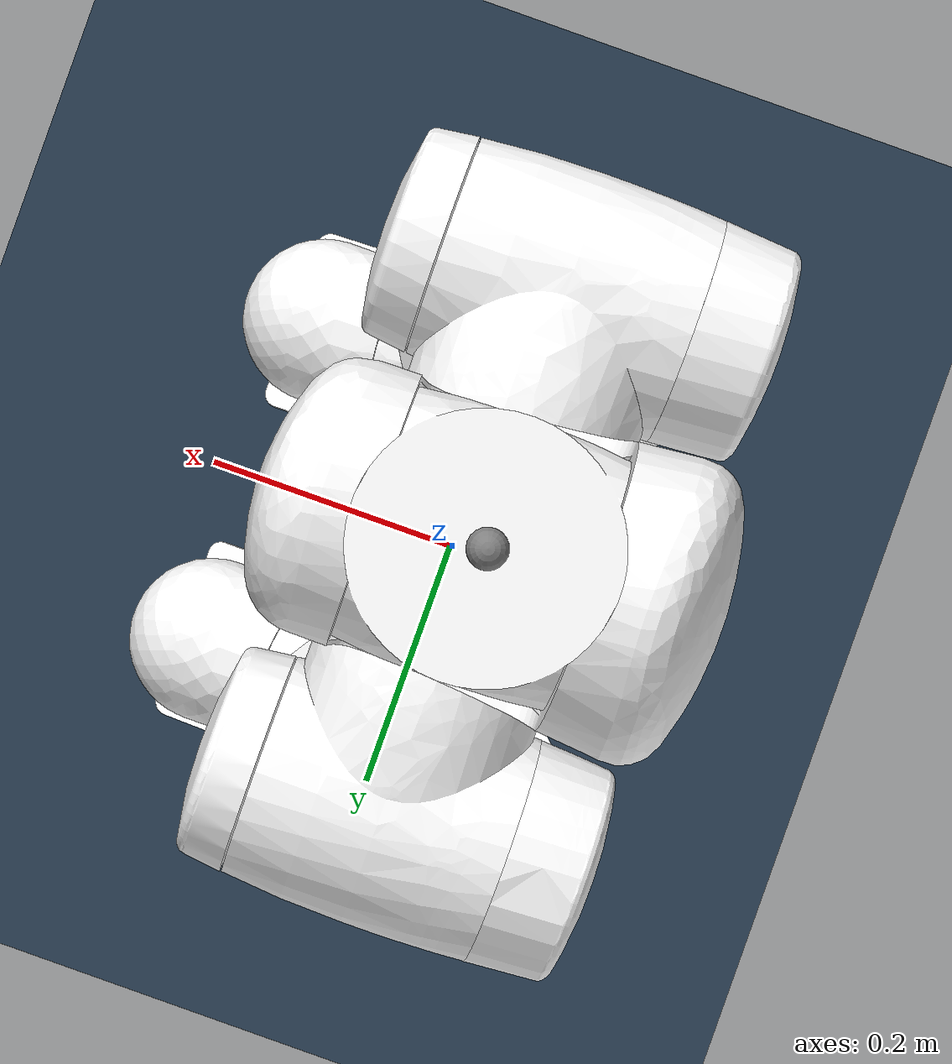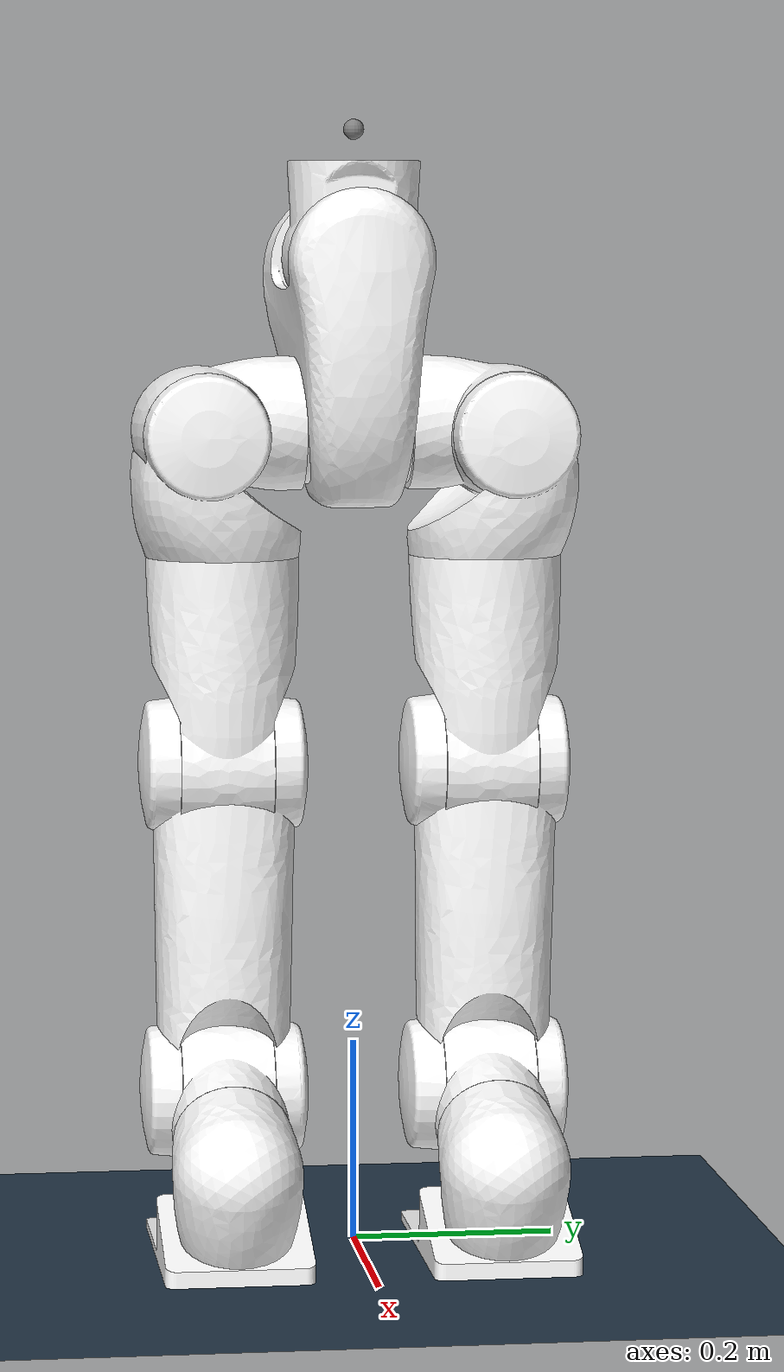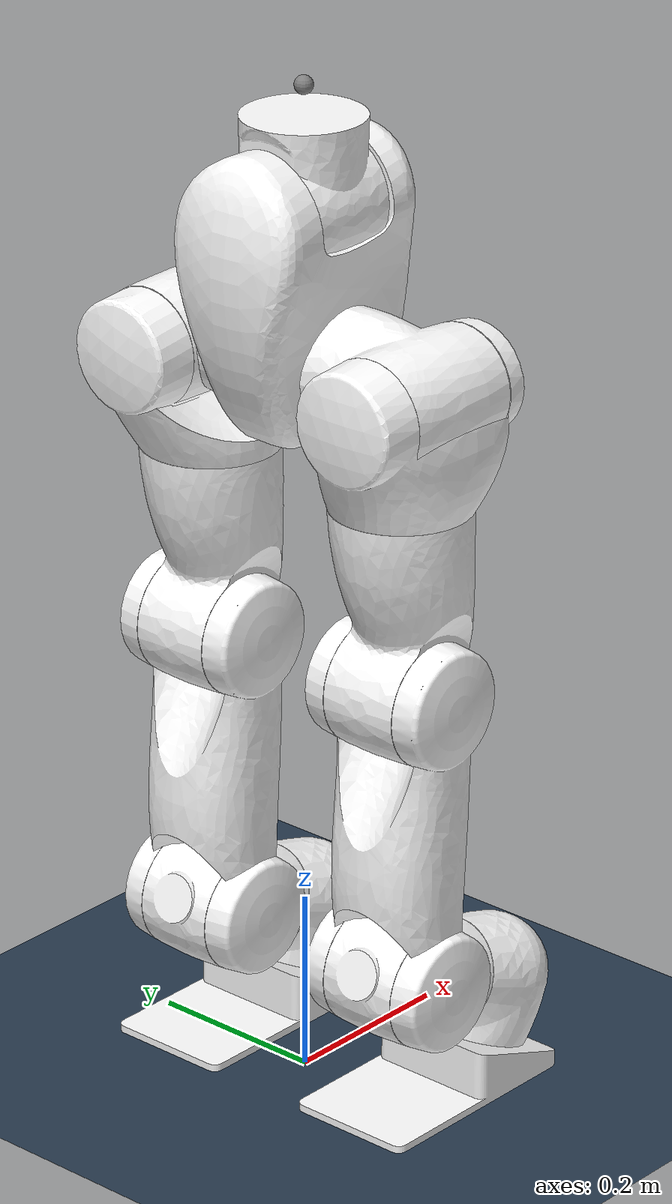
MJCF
<mujoco model="leg_v1">
  <compiler angle="radian" meshdir="meshes" autolimits="true"/>
  <option timestep='0.001' integrator="implicitfast"/>
  <statistic meansize="0.223045" extent="1.28205" center="0.00861955 0.000148433 -0.621626"/>
  <default class="main">
    <default class="leg">
      <joint armature="1" stiffness="20" damping="30"/>
      <default class="visual">
        <geom type="mesh" contype="0" conaffinity="0" group="2" density="0" rgba="1 1 1 1"/>
      </default>
      <default class="collision">
        <!-- all self collisions are disabled -->
        <geom type="mesh" contype="1" conaffinity="0" group="3" rgba="1 1 1 1"/>
      </default>
    </default>
  </default>
  <asset>
    <texture name="texplane" type="2d" builtin="checker" rgb1=".2 .3 .4" rgb2=".1 0.15 0.2"
          width="512" height="512" mark="cross" markrgb=".8 .8 .8"/>
    <material name="matplane" reflectance="0." texture="texplane" texrepeat="1 1" texuniform="true"/>

    <!-- visual meshes -->
    <mesh name="torso_link1" file="visual/torso_link1.obj"/>
    <mesh name="torso_link0" file="visual/torso_link0.obj"/>
    <mesh name="left_leg_link0" file="visual/left_leg_link0.obj"/>
    <mesh name="left_leg_link1" file="visual/left_leg_link1.obj"/>
    <mesh name="left_leg_link2" file="visual/left_leg_link2.obj"/>
    <mesh name="left_leg_link3" file="visual/left_leg_link3.obj"/>
    <mesh name="left_leg_link4" file="visual/left_leg_link4.obj"/>
    <mesh name="left_leg_link5" file="visual/left_leg_link5.obj"/>
    <mesh name="left_leg_link6" file="visual/left_leg_link6.obj"/>
    <mesh name="right_leg_link0" file="visual/right_leg_link0.obj"/>
    <mesh name="right_leg_link1" file="visual/right_leg_link1.obj"/>
    <mesh name="right_leg_link2" file="visual/right_leg_link2.obj"/>
    <mesh name="right_leg_link3" file="visual/right_leg_link3.obj"/>
    <mesh name="right_leg_link4" file="visual/right_leg_link4.obj"/>
    <mesh name="right_leg_link5" file="visual/right_leg_link5.obj"/>
    <mesh name="right_leg_link6" file="visual/right_leg_link6.obj"/>
    <mesh name="foot_base_link" file="visual/foot_base_link.obj"/>

    <!-- collision meshes -->
    <mesh name="torso_link1_collision" file="collision/torso_link1.stl"/>
    <mesh name="torso_link0_collision" file="collision/torso_link0.stl"/>
    <mesh name="left_leg_link0_collision" file="collision/left_leg_link0.stl"/>
    <mesh name="left_leg_link1_collision" file="collision/left_leg_link1.stl"/>
    <mesh name="left_leg_link2_collision" file="collision/left_leg_link2.stl"/>
    <mesh name="left_leg_link3_collision" file="collision/left_leg_link3.stl"/>
    <mesh name="left_leg_link4_collision" file="collision/left_leg_link4.stl"/>
    <mesh name="left_leg_link5_collision" file="collision/left_leg_link5.stl"/>
    <mesh name="left_leg_link6_collision" file="collision/left_leg_link6.stl"/>
    <mesh name="right_leg_link0_collision" file="collision/right_leg_link0.stl"/>
    <mesh name="right_leg_link1_collision" file="collision/right_leg_link1.stl"/>
    <mesh name="right_leg_link2_collision" file="collision/right_leg_link2.stl"/>
    <mesh name="right_leg_link3_collision" file="collision/right_leg_link3.stl"/>
    <mesh name="right_leg_link4_collision" file="collision/right_leg_link4.stl"/>
    <mesh name="right_leg_link5_collision" file="collision/right_leg_link5.stl"/>
    <mesh name="right_leg_link6_collision" file="collision/right_leg_link6.stl"/>
    <mesh name="foot_base_link_collision" file="collision/foot_base_link.stl"/>
  </asset>
  <worldbody>
    <light directional="true" diffuse=".4 .4 .4" specular="0.1 0.1 0.1" pos="0 0 5.0" dir="0 0 -1" castshadow="false"/>
    <light directional="true" diffuse=".6 .6 .6" specular="0.2 0.2 0.2" pos="0 0 4" dir="0 0 -1" castshadow="false"/>
    <geom name="ground" type="plane" size="0 0 1" pos="0.001 0 0" quat="1 0 0 0" material="matplane" condim="1" conaffinity='15'/>

    <body name="base_link" pos="0 0 1.1" quat="1 0 0 0" childclass="leg">
      <freejoint/>
      <geom class="visual" pos="0 0 -0.125" quat="-0.5 -0.5 -0.5 -0.5" type="mesh" mesh="torso_link1"/>
      <geom class="collision" pos="0 0 -0.125" quat="-0.5 -0.5 -0.5 -0.5" type="mesh" mesh="torso_link1_collision"/>
      <site name='imu' size='0.01' pos='0.0 0 0.0'/>
      <geom class="visual" pos="0 0 -0.285" quat="0 -0.707107 0 -0.707107" type="mesh" mesh="torso_link0"/>
      <geom class="collision" pos="0 0 -0.285" quat="0 -0.707107 0 -0.707107" type="mesh" mesh="torso_link0_collision"/>
      <geom class="visual" pos="0 0.02 -0.285" quat="0.5 0.5 0.5 -0.5" type="mesh" mesh="left_leg_link0"/>
      <geom class="collision" pos="0 0.02 -0.285" quat="0.5 0.5 0.5 -0.5" type="mesh" mesh="left_leg_link0_collision"/>
      <geom class="visual" pos="0 -0.02 -0.285" quat="0.5 0.5 0.5 -0.5" type="mesh" mesh="right_leg_link0"/>
      <geom class="collision" pos="0 -0.02 -0.285" quat="0.5 0.5 0.5 -0.5" type="mesh" mesh="right_leg_link0_collision"/>
      <body name="left_leg/link_1" pos="0 0.15 -0.285" quat="0.5 0.5 0.5 -0.5">
        <inertial pos="0.005749 -0.014791 0.027521" quat="0.974573 -0.200549 -0.0938204 -0.0344162" mass="4.73346" diaginertia="0.0187761 0.0165536 0.0112734"/>
        <joint name="left_leg/joint_1" pos="0 0 0" axis="0 0 1" range="-0.349066 2.18166"/>
        <geom class="visual" type="mesh" mesh="left_leg_link1"/>
        <geom class="collision" type="mesh" mesh="left_leg_link1_collision"/>
        <body name="left_leg/link_2" pos="0.01 0 0" quat="0.5 0.5 -0.5 0.5">
          <inertial pos="0.001424 -0.063857 0.011906" quat="0.939434 -0.310888 -0.00470262 0.144188" mass="4.38268" diaginertia="0.0311052 0.0250514 0.0194396"/>
          <joint name="left_leg/joint_2" pos="0 0 0" axis="0 0 1" range="-0.785398 0.174533"/>
          <geom class="visual" type="mesh" mesh="left_leg_link2"/>
          <geom class="collision" type="mesh" mesh="left_leg_link2_collision"/>
          <body name="left_leg/link_3" pos="0.02 -0.325 0" quat="0.5 -0.5 0.5 0.5">
            <inertial pos="0.004992 0.004534 0.062903" quat="0.737574 0.0325265 -0.0186696 0.674224" mass="5.80192" diaginertia="0.0361616 0.0349879 0.0121355"/>
            <joint name="left_leg/joint_3" pos="0 0 0" axis="0 0 1" range="-0.785398 0.785398"/>
            <geom class="visual" type="mesh" mesh="left_leg_link3"/>
            <geom class="collision" type="mesh" mesh="left_leg_link3_collision"/>
            <body name="left_leg/link_4" quat="0.5 -0.5 0.5 0.5">
              <inertial pos="0.152224 -0.005618 -0.000745" quat="0.515264 0.474553 0.465826 0.540655" mass="4.42018" diaginertia="0.0906721 0.0870797 0.0129417"/>
              <joint name="left_leg/joint_4" pos="0 0 0" axis="0 0 1" range="0 2.26893"/>
              <geom class="visual" type="mesh" mesh="left_leg_link4"/>
              <geom class="collision" type="mesh" mesh="left_leg_link4_collision"/>
              <body name="left_leg/link_5" pos="0.325 0 0" quat="0.984808 0 0 0.173648">
                <inertial pos="-0.000366 -0.014028 0.006854" quat="0.481056 0.516659 -0.526701 0.473533" mass="3.68529" diaginertia="0.0117276 0.0107122 0.00676645"/>
                <joint name="left_leg/joint_5" pos="0 0 0" axis="0 0 1" range="-0.698132 0.261799"/>
                <geom class="visual" type="mesh" mesh="left_leg_link5"/>
                <geom class="collision" type="mesh" mesh="left_leg_link5_collision"/>
                <body name="left_leg/link_6" quat="0.707107 -0.707107 0 0">
                  <inertial pos="0.0513589 1.57483e-06 -0.13372" quat="0.61497 0.349181 0.34929 0.61472" mass="5.25777" diaginertia="0.0272787 0.0265971 0.0151268"/>
                  <joint name="left_leg/joint_6" pos="0 0 0" axis="0 0 1" range="-0.349066 0.349066"/>
                  <geom class="visual" type="mesh" mesh="left_leg_link6"/>
                  <geom class="collision" type="mesh" mesh="left_leg_link6_collision"/>
                  <geom size="0.04 0.01" pos="0.06 0 -0.16" quat="0.707107 0 0.707107 0" type="cylinder" rgba="0.3 0.3 0.3 1"/>
                  <geom size="0.04 0.0075" pos="0.0775 0 -0.16" quat="0.707107 0 0.707107 0" type="cylinder"/>
                  <geom class="visual" pos="0.07 0 -0.16" quat="0 -0.707107 0 0.707107" type="mesh" mesh="foot_base_link"/>
                  <geom class="collision" pos="0.07 0 -0.16" quat="0 -0.707107 0 0.707107" type="mesh" mesh="foot_base_link_collision"/>
                </body>
              </body>
            </body>
          </body>
        </body>
      </body>
      <body name="right_leg/link_1" pos="0 -0.15 -0.285" quat="0.5 0.5 0.5 -0.5">
        <inertial pos="0.005749 -0.014791 -0.027521" quat="0.974573 0.200549 0.0938204 -0.0344162" mass="4.73346" diaginertia="0.0187761 0.0165536 0.0112734"/>
        <joint name="right_leg/joint_1" pos="0 0 0" axis="0 0 1" range="-0.349066 2.18166"/>
        <geom class="visual" type="mesh" mesh="right_leg_link1"/>
        <geom class="collision" type="mesh" mesh="right_leg_link1_collision"/>
        <body name="right_leg/link_2" pos="0.01 0 0" quat="0.5 -0.5 0.5 0.5">
          <inertial pos="0.001424 -0.063857 -0.011906" quat="0.939434 0.310888 0.00470262 0.144188" mass="4.38268" diaginertia="0.0311052 0.0250514 0.0194396"/>
          <joint name="right_leg/joint_2" pos="0 0 0" axis="0 0 1" range="-0.785398 0.174533"/>
          <geom class="visual" type="mesh" mesh="right_leg_link2"/>
          <geom class="collision" type="mesh" mesh="right_leg_link2_collision"/>
          <body name="right_leg/link_3" pos="0.02 -0.325 0" quat="0.5 0.5 -0.5 0.5">
            <inertial pos="0.004992 -0.004534 -0.062903" quat="0.674224 0.0186696 -0.0325265 0.737574" mass="5.80192" diaginertia="0.0361616 0.0349879 0.0121355"/>
            <joint name="right_leg/joint_3" pos="0 0 0" axis="0 0 1" range="-0.785398 0.785398"/>
            <geom class="visual" type="mesh" mesh="right_leg_link3"/>
            <geom class="collision" type="mesh" mesh="right_leg_link3_collision"/>
            <body name="right_leg/link_4" quat="0.5 0.5 -0.5 0.5">
              <inertial pos="0.152224 -0.005618 -0.000745" quat="0.515264 0.474553 0.465826 0.540655" mass="4.42018" diaginertia="0.0906721 0.0870797 0.0129417"/>
              <joint name="right_leg/joint_4" pos="0 0 0" axis="0 0 1" range="0 2.26893"/>
              <geom class="visual" type="mesh" mesh="right_leg_link4"/>
              <geom class="collision" type="mesh" mesh="right_leg_link4_collision"/>
              <body name="right_leg/link_5" pos="0.325 0 0" quat="0.984808 0 0 0.173648">
                <inertial pos="-0.000366 -0.014028 0.006854" quat="0.481056 0.516659 -0.526701 0.473533" mass="3.68529" diaginertia="0.0117276 0.0107122 0.00676645"/>
                <joint name="right_leg/joint_5" pos="0 0 0" axis="0 0 1" range="-0.698132 0.261799"/>
                <geom class="visual" type="mesh" mesh="right_leg_link5"/>
                <geom class="collision" type="mesh" mesh="right_leg_link5_collision"/>
                <body name="right_leg/link_6" quat="0.707107 0.707107 0 0">
                  <inertial pos="0.0513589 -1.57483e-06 0.13372" quat="0.34929 0.61472 0.61497 0.349181" mass="5.25777" diaginertia="0.0272787 0.0265971 0.0151268"/>
                  <joint name="right_leg/joint_6" pos="0 0 0" axis="0 0 1" range="-0.349066 0.349066"/>
                  <geom class="visual" type="mesh" mesh="right_leg_link6"/>
                  <geom class="collision" type="mesh" mesh="right_leg_link6_collision"/>
                  <geom size="0.04 0.01" pos="0.06 0 0.16" quat="0 0.707107 0 0.707107" type="cylinder" rgba="0.3 0.3 0.3 1"/>
                  <geom size="0.04 0.0075" pos="0.0775 0 0.16" quat="0 0.707107 0 0.707107" type="cylinder"/>
                  <geom class="visual" pos="0.07 0 0.16" quat="0.707107 0 -0.707107 0" type="mesh" mesh="foot_base_link"/>
                  <geom class="collision" pos="0.07 0 0.16" quat="0.707107 0 -0.707107 0" type="mesh" mesh="foot_base_link_collision"/>
                </body>
              </body>
            </body>
          </body>
        </body>
      </body>
    </body>
  </worldbody>

  <sensor>
      <framequat     name='orientation' objtype='site' noise='0.001' objname='imu'/>
      <framepos     name='position' objtype='site' noise='0.001' objname='imu'/>
      <gyro          name='angular-velocity'    site='imu' noise='0.005' cutoff='34.9'/>
      <velocimeter   name='linear-velocity'     site='imu' noise='0.001' cutoff='30'/>
      <accelerometer name='linear-acceleration' site='imu' noise='0.005' cutoff='157'/>
      <magnetometer  name='magnetometer'        site='imu'/>
  </sensor>
  <actuator>
    <position name="left_leg/joint_1" joint="left_leg/joint_1" ctrlrange="-0.349066 2.18166" forcerange="-240 240" kp="150" kv="5"/>
    <position name="right_leg/joint_1" joint="right_leg/joint_1" ctrlrange="-0.349066 2.18166" forcerange="-240 240" kp="150" kv="5"/>
    <position name="left_leg/joint_2" joint="left_leg/joint_2" ctrlrange="-0.785398 0.174533" forcerange="-150 150" kp="150" kv="5"/>
    <position name="right_leg/joint_2" joint="right_leg/joint_2" ctrlrange="-0.785398 0.174533" forcerange="-150 150" kp="150" kv="5"/>
    <position name="left_leg/joint_3" joint="left_leg/joint_3" ctrlrange="-0.785398 0.785398" forcerange="-120 120" kp="150" kv="5"/>
    <position name="right_leg/joint_3" joint="right_leg/joint_3" ctrlrange="-0.785398 0.785398" forcerange="-120 120" kp="150" kv="5"/>
    <position name="left_leg/joint_4" joint="left_leg/joint_4" ctrlrange="0 2.26893" forcerange="-150 150" kp="150" kv="5"/>
    <position name="right_leg/joint_4" joint="right_leg/joint_4" ctrlrange="0 2.26893" forcerange="-150 150" kp="150" kv="5"/>
    <position name="left_leg/joint_5" joint="left_leg/joint_5" ctrlrange="-0.698132 0.261799" forcerange="-150 150" kp="150" kv="5"/>
    <position name="right_leg/joint_5" joint="right_leg/joint_5" ctrlrange="-0.698132 0.261799" forcerange="-150 150" kp="150" kv="5"/>
    <position name="left_leg/joint_6" joint="left_leg/joint_6" ctrlrange="-0.349066 0.349066" forcerange="-70 70" kp="20" kv="4"/>
    <position name="right_leg/joint_6" joint="right_leg/joint_6" ctrlrange="-0.349066 0.349066" forcerange="-70 70" kp="20" kv="4"/>
  </actuator>
</mujoco>
